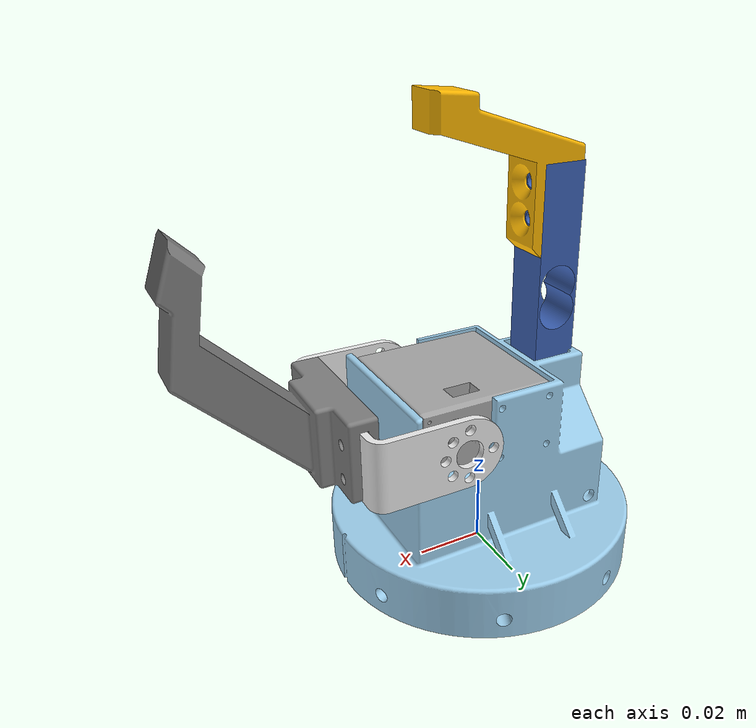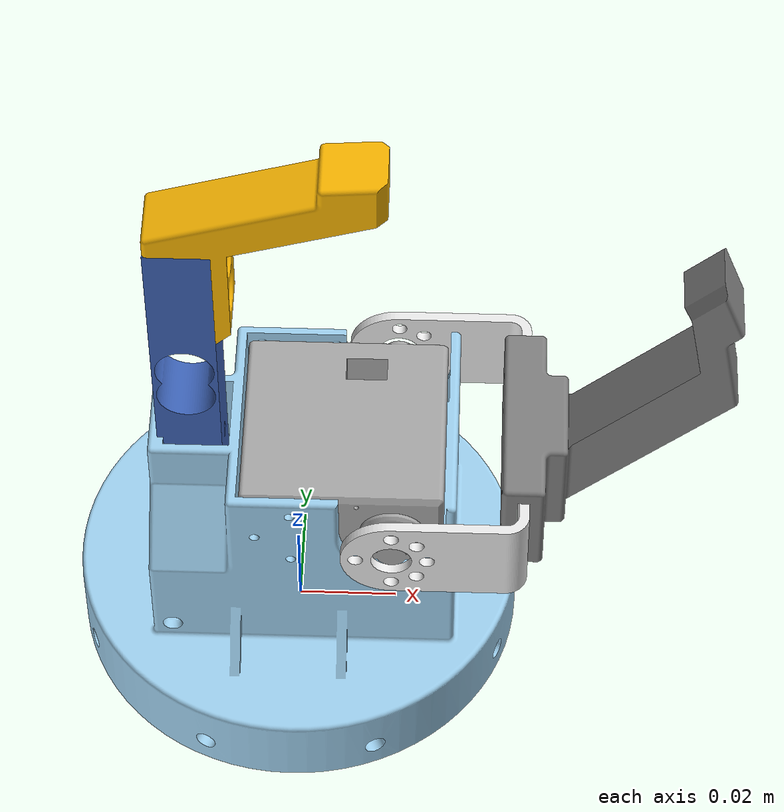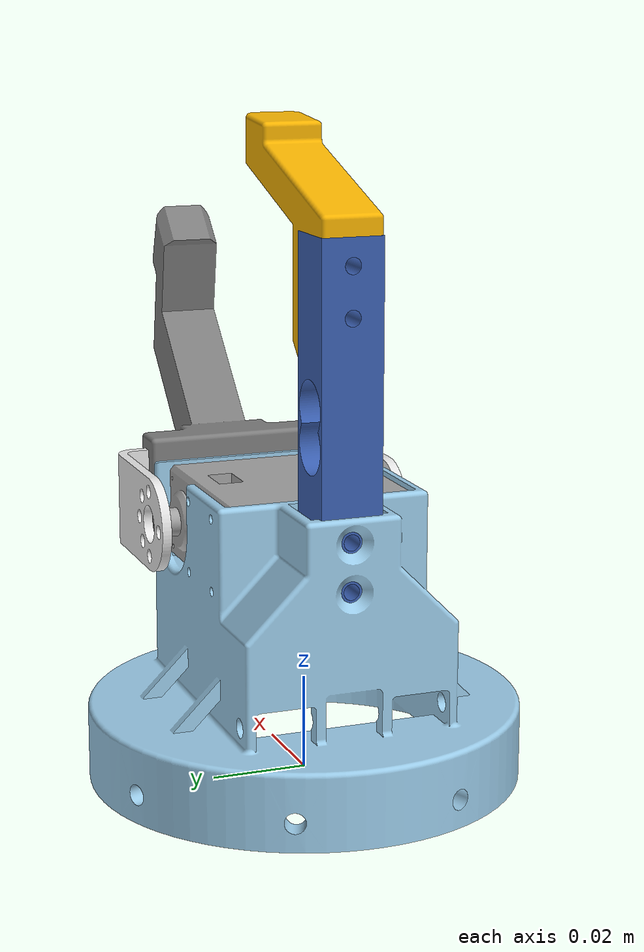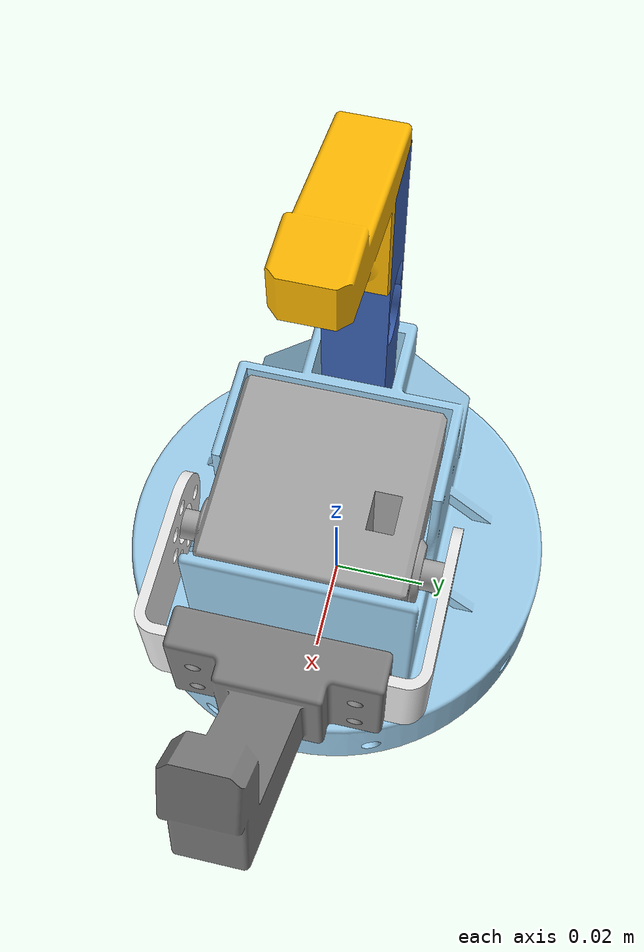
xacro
<?xml version="1.0" ?>
<robot xmlns:xacro="http://www.ros.org/wiki/xacro" name="q_gripper_standalone">

  <xacro:include filename="$(find q_gripper)/urdf/q_gripper.xacro" />

  <link name="world" />

  <!-- the gripper, attached to world -->

  <xacro:q_gripper prefix="q_gripper" />

  <joint name="world_diana_gripper_joint" type="fixed" >
   <parent link="world" />
   <child  link="q_gripper_base" />
   <origin xyz="0 0 0" rpy="0 0 0" />
  </joint>

</robot>

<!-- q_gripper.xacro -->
<robot xmlns:xacro="http://www.ros.org/wiki/xacro" name="q_gripper">

    <xacro:macro name="q_gripper" params="prefix">

        <link name="${prefix}_base">
            <visual>
                <origin
                    xyz="-0.013950000000000000594 1.3877787807814456755e-17 0.11550000000000000544"
                    rpy="0 -0 -1.570796326794896558" />
                <geometry>
                    <mesh filename="package://q_gripper/urdf/loadcell_finger2.stl" />
                </geometry>
                <material name="loadcell_finger2_material">
                    <color
                        rgba="0.98039215686274505668 0.71372549019607844922 0.0039215686274509803377 1.0" />
                </material>
            </visual>
            <collision>
                <origin
                    xyz="-0.013950000000000000594 1.3877787807814456755e-17 0.11550000000000000544"
                    rpy="0 -0 -1.570796326794896558" />
                <geometry>
                    <mesh filename="package://q_gripper/urdf/loadcell_finger2.stl" />
                </geometry>
            </collision>
            <visual>
                <origin
                    xyz="-0.013950000000000000594 0.0063750000000000056621 0.040499999999999994338"
                    rpy="1.570796326794896558 -0 -1.570796326794896558" />
                <geometry>
                    <mesh filename="package://q_gripper/urdf/loadcell.stl" />
                </geometry>
                <material name="loadcell_material">
                    <color
                        rgba="0.2313725490196078538 0.38039215686274507888 0.7058823529411765163 1.0" />
                </material>
            </visual>
            <collision>
                <origin
                    xyz="-0.013950000000000000594 0.0063750000000000056621 0.040499999999999994338"
                    rpy="1.570796326794896558 -0 -1.570796326794896558" />
                <geometry>
                    <mesh filename="package://q_gripper/urdf/loadcell.stl" />
                </geometry>
            </collision>
            <visual>
                <origin
                    xyz="0.030000000000000005829 0.019750000000000003664 0.040499999999999987399"
                    rpy="-1.570796326794896558 -0 3.141592653589793116" />
                <geometry>
                    <mesh filename="package://q_gripper/urdf/base.stl" />
                </geometry>
                <material name="base_material">
                    <color
                        rgba="0.64705882352941179736 0.64705882352941179736 0.64705882352941179736 1.0" />
                </material>
            </visual>
            <collision>
                <origin
                    xyz="0.030000000000000005829 0.019750000000000003664 0.040499999999999987399"
                    rpy="-1.570796326794896558 -0 3.141592653589793116" />
                <geometry>
                    <mesh filename="package://q_gripper/urdf/base.stl" />
                </geometry>
            </collision>
            <visual>
                <origin xyz="0 0 0" rpy="0 -0 1.570796326794896558" />
                <geometry>
                    <mesh filename="package://q_gripper/urdf/gripper_hull.stl" />
                </geometry>
                <material name="gripper_hull_material">
                    <color
                        rgba="0.61568627450980395466 0.81176470588235294379 0.92941176470588238168 1.0" />
                </material>
            </visual>
            <collision>
                <origin xyz="0 0 0" rpy="0 -0 1.570796326794896558" />
                <geometry>
                    <mesh filename="package://q_gripper/urdf/gripper_hull.stl" />
                </geometry>
            </collision>
            <inertial>
                <origin xyz="0 0 0" rpy="0 0 0" />
                <mass value="0" />
                <inertia ixx="0" ixy="0" ixz="0" iyy="0" iyz="0" izz="0" />
            </inertial>
        </link>

        <link name="${prefix}_palm">
            <inertial>
                <origin xyz="0 0 0" rpy="0 0 0" />
                <mass value="1e-9" />
                <inertia ixx="0" ixy="0" ixz="0" iyy="0" iyz="0" izz="0" />
            </inertial>
        </link>
        <joint name="${prefix}_palm_mirrored_frame" type="fixed">
            <origin xyz="0.019879794899435476729 -0.00076566657683469602734 0.060499999999999984346"
                rpy="0 -0 0" />
            <parent link="${prefix}_base" />
            <child link="${prefix}_palm" />
            <axis xyz="0 0 0" />
        </joint>
        <link name="${prefix}_palm_mirrored">
            <inertial>
                <origin xyz="0 0 0" rpy="0 0 0" />
                <mass value="1e-9" />
                <inertia ixx="0" ixy="0" ixz="0" iyy="0" iyz="0" izz="0" />
            </inertial>
        </link>
        <joint name="${prefix}_palm_frame" type="fixed">
            <origin xyz="0 0 0 " rpy="0 -0 3.14159265" />
            <parent link="${prefix}_palm" />
            <child link="${prefix}_palm_mirrored" />
            <axis xyz="0 0 0" />
        </joint>

        <link name="${prefix}_grasp_tip" />
        <joint name="${prefix}_grasp_tip_frame" type="fixed">
            <origin xyz="0.019879794899435476729 -0.00076566657683469711154 0.13549999999999998157"
                rpy="0 0 0" />
            <parent link="${prefix}_base" />
            <child link="${prefix}_grasp_tip" />
        </joint>

        <link name="${prefix}_grasp_tip_camera" />
        <joint name="${prefix}_grasp_tip_camera_frame" type="fixed">
            <origin xyz="0.019879794899435476729 -0.00076566657683469711154 0.13549999999999998157"
                rpy="0 0 -1.57" />
            <parent link="${prefix}_base" />
            <child link="${prefix}_grasp_tip_camera" />
        </joint>

        <link name="${prefix}_grasp_tip_mirrored" />
        <joint name="${prefix}_grasp_tip_mirrored_frame" type="fixed">
            <origin xyz="0 0 0" rpy="0 0 3.1416" />
            <parent link="${prefix}_grasp_tip" />
            <child link="${prefix}_grasp_tip_mirrored" />
        </joint>

        <link name="${prefix}_grasp_point" />
        <joint name="${prefix}_grasp_point_frame" type="fixed">
            <origin xyz="0.019879794899435476729 -0.00076566657683469602734 0.13049999999999997713"
                rpy="0 -0 0" />
            <parent link="${prefix}_base" />
            <child link="${prefix}_grasp_point" />
            <axis xyz="0 0 0" />
        </joint>

        <link name="${prefix}_grasp_point_approach" />
        <joint name="${prefix}_grasp_point_approach_frame" type="fixed">
            <origin xyz="0.015 0 0" rpy="0 0 0" />
            <parent link="${prefix}_grasp_point" />
            <child link="${prefix}_grasp_point_approach" />
            <axis xyz="0 0 0" />
        </joint>

        <link name="${prefix}_finger">
            <visual>
                <origin
                    xyz="-0.058950304651063649419 0.061258215632466875289 -0.027286725877128180373"
                    rpy="-1.570796326794896558 -4.3297802811774688943e-17 0.78539816339744694673" />
                <geometry>
                    <mesh filename="package://q_gripper/urdf/motor_finger.stl" />
                </geometry>
                <material name="motor_finger_material">
                    <color
                        rgba="0.49803921568627451677 0.49803921568627451677 0.49803921568627451677 1.0" />
                </material>
            </visual>
            <collision>
                <origin
                    xyz="-0.058950304651063649419 0.061258215632466875289 -0.027286725877128180373"
                    rpy="-1.570796326794896558 -4.3297802811774688943e-17 0.78539816339744694673" />
                <geometry>
                    <mesh filename="package://q_gripper/urdf/motor_finger.stl" />
                </geometry>
            </collision>
            <visual>
                <origin
                    xyz="-6.9388939039072283776e-18 0.024686725877128168349 -0.027286725877128169965"
                    rpy="-1.570796326794896558 -1.570796326794896558 0" />
                <geometry>
                    <mesh filename="package://q_gripper/urdf/finger.stl" />
                </geometry>
                <material name="finger_material">
                    <color
                        rgba="0.91764705882352937127 0.91764705882352937127 0.91764705882352937127 1.0" />
                </material>
            </visual>
            <collision>
                <origin
                    xyz="-6.9388939039072283776e-18 0.024686725877128168349 -0.027286725877128169965"
                    rpy="-1.570796326794896558 -1.570796326794896558 0" />
                <geometry>
                    <mesh filename="package://q_gripper/urdf/finger.stl" />
                </geometry>
            </collision>
            <inertial>
                <origin xyz="0 0 0" rpy="0 0 0" />
                <mass value="0" />
                <inertia ixx="0" ixy="0" ixz="0" iyy="0" iyz="0" izz="0" />
            </inertial>
        </link>

        <joint name="${prefix}_FJ" type="revolute">
            <origin xyz="0.020000000000000017764 -0.027286999999999998756 0.050499999999999989342"
                rpy="-1.5707963267948972241 1.570796327 3.141592653589793116" />
            <parent link="${prefix}_base" />
            <child link="${prefix}_finger" />
            <axis xyz="0 0 1" />
            <limit effort="1" velocity="20" lower="-0.6" upper="0.79" />
            <joint_properties friction="0.0" />
        </joint>

        <link name="${prefix}_finger_axis" />
        <joint name="${prefix}_finger_axis_frame" type="fixed">
            <origin xyz="0 0 -0.0275" rpy="0 ${pi/2} ${3*pi/4}" />
            <parent link="${prefix}_finger" />
            <child link="${prefix}_finger_axis" />
        </joint>

        <link name="${prefix}_finger_grasp_point" />
        <joint name="${prefix}_finger_grasp_point_frame" type="fixed">
            <origin xyz="0 -0.00169 0.08" rpy="0 0 0" />
            <parent link="${prefix}_finger_axis" />
            <child link="${prefix}_finger_grasp_point" />
        </joint>

        <link name="${prefix}_finger_grasp_tip" />
        <joint name="${prefix}_finger_grasp_tip_frame" type="fixed">
            <origin xyz="0 0 0.005" rpy="0 0 0" />
            <parent link="${prefix}_finger_grasp_point" />
            <child link="${prefix}_finger_grasp_tip" />
        </joint>

        <link name="${prefix}_finger_grasp_tip_mirrored" />
        <joint name="${prefix}_finger_grasp_tip_mirrored_frame" type="fixed">
            <origin xyz="0 0 0" rpy="0 0 3.1416" />
            <parent link="${prefix}_finger_grasp_tip" />
            <child link="${prefix}_finger_grasp_tip_mirrored" />
        </joint>

        <link name="${prefix}_finger_elbow" />
        <joint name="${prefix}_finger_elbow_frame" type="fixed">
            <origin xyz="0 -0.0225 0.066" rpy="0 0 0" />
            <parent link="${prefix}_finger_axis" />
            <child link="${prefix}_finger_elbow" />
        </joint>

        <link name="${prefix}_elbow" />
        <joint name="${prefix}_elbow_frame" type="fixed">
            <origin xyz="-0.04 0.0 0.055" rpy="0 0 ${pi/2}" />
            <parent link="${prefix}_palm" />
            <child link="${prefix}_elbow" />
        </joint>

    </xacro:macro>

</robot>
